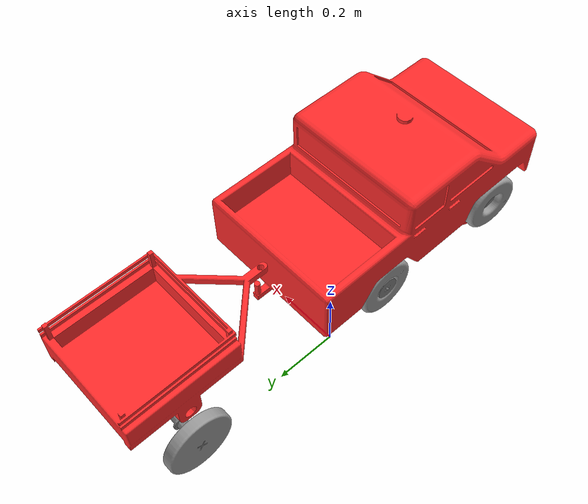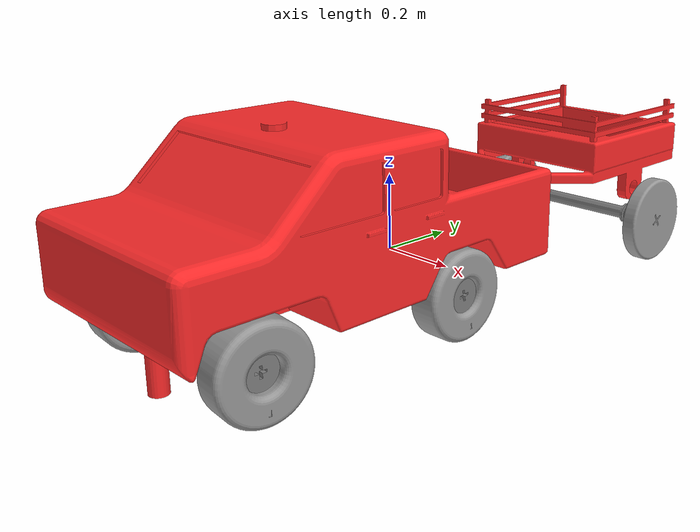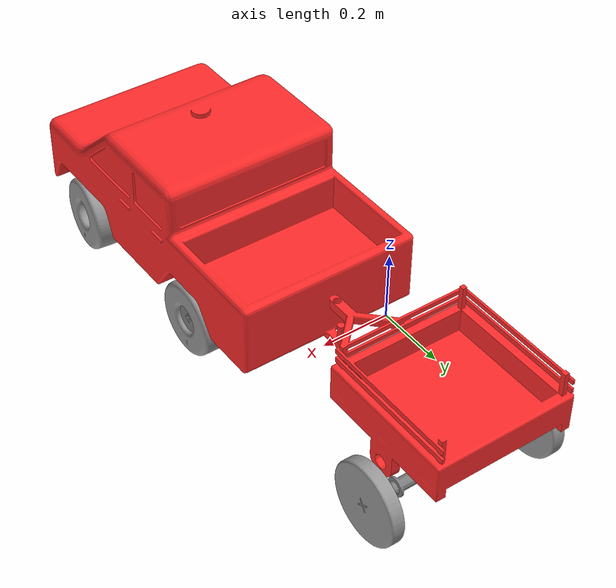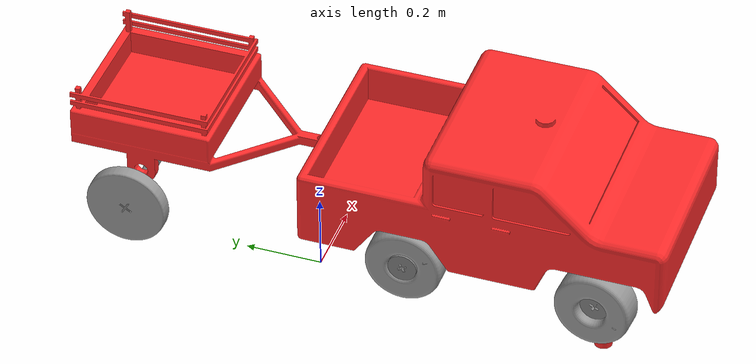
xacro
<?xml version="1.0" ?>
<robot
  name="project_1_group_2" xmlns:xacro="http://ros.org/wiki/xacro">

 <gazebo>
    <plugin filename="libgazebo_ros2_control.so" name="gazebo_ros2_control">
        <parameters>$(find project_1_group_2)/config/control.yaml</parameters>
    </plugin>
</gazebo>

  <xacro:macro name="red_color">
      <visual>
      <material>
          <ambient>1 0.168627450980392 0.168627450980392 1</ambient>
          <diffuse>1 0.168627450980392 0.168627450980392 1</diffuse>
          <specular>0.1 0.1 0.1 1</specular>
          <emissive>0 0 0 0</emissive>
      </material>
      </visual>
  </xacro:macro>

  <xacro:macro name="grey_color">
      <visual>
      <material>
          <ambient>0.8 0.558823529411765 0.1 1</ambient>
          <diffuse>0.8 0.558823529411765 0.1 1</diffuse>
          <specular>0.1 0.1 0.1 1</specular>
          <emissive>0 0 0 0</emissive>
      </material>
      </visual>
  </xacro:macro>

  <xacro:macro name="black_color">
      <visual>
      <material>
          <ambient>0.6 0.6 0.6 1</ambient>
          <diffuse>0.6 0.6 0.6 1</diffuse>
          <specular>0.1 0.1 0.1 1</specular>
          <emissive>0 0 0 0</emissive>
      </material>
      </visual>
  </xacro:macro>

  <link
    name="base_link">
    <inertial>
      <origin
        xyz="0.219542185844718 -0.489097435985613 0.253171163731009"
        rpy="0 0 0" />
      <mass
        value="45.0255547584039" />
      <inertia
        ixx="3.47370213259269"
        ixy="8.68638754770634E-06"
        ixz="1.28817771727052E-06"
        iyy="1.51493007257673"
        iyz="0.0559660105211115"
        izz="4.32787408102168" />
    </inertial>
    <visual>
      <origin
        xyz="0 0 0"
        rpy="0 0 0" />
      <geometry>
        <mesh
          filename="package://project_1_group_2/meshes/base_link.STL" />
      </geometry>
      <material
        name="">
        <color
          rgba="1 0.168627450980392 0.168627450980392 1" />
      </material>
    </visual>
    <collision>
      <origin
        xyz="0 0 0"
        rpy="0 0 0" />
      <geometry>
        <mesh
          filename="package://project_1_group_2/meshes/base_link.STL" />
      </geometry>
    </collision>
  </link>
  <link
    name="steering_wheel_1">
    <inertial>
      <origin
        xyz="2.86075080291326E-08 0.0749063419355981 0.00254051949689649"
        rpy="0 0 0" />
      <mass
        value="0.295424107267104" />
      <inertia
        ixx="0.000710809060839364"
        ixy="1.53957020749097E-10"
        ixz="3.53322320504462E-10"
        iyy="0.000104054571155282"
        iyz="3.85934455800396E-05"
        izz="0.000690101015602261" />
    </inertial>
    <visual>
      <origin
        xyz="0 0 0"
        rpy="0 0 0" />
      <geometry>
        <mesh
          filename="package://project_1_group_2/meshes/steering_wheel_1.STL" />
      </geometry>
      <material
        name="">
        <color
          rgba="1 0.168627450980392 0.168627450980392 1" />
      </material>
    </visual>
    <collision>
      <origin
        xyz="0 0 0"
        rpy="0 0 0" />
      <geometry>
        <mesh
          filename="package://project_1_group_2/meshes/steering_wheel_1.STL" />
      </geometry>
    </collision>
  </link>
  <joint
    name="steering_joint_1"
    type="revolute">
    <origin
      xyz="0.0709516994137151 -0.734196139704711 0.0381336482199598"
      rpy="1.5707963267949 0 -1.64845028267497" />
    <parent
      link="base_link" />
    <child
      link="steering_wheel_1" />
    <axis
      xyz="0 1 0" />
    <limit
      lower="0"
      upper="1.5707963267949"
      effort="1000"
      velocity="0" />
  </joint>
  <link
    name="wheel_1">
    <inertial>
      <origin
        xyz="-1.11022302462516E-16 0.0328469418204771 -1.11022302462516E-16"
        rpy="0 0 0" />
      <mass
        value="0.217134053712094" />
      <inertia
        ixx="0.000126052696684197"
        ixy="-6.05628557286825E-20"
        ixz="-1.01643953670516E-20"
        iyy="0.000159854355976214"
        iyz="-1.22819777351874E-19"
        izz="0.000126052696684198" />
    </inertial>
    <visual>
      <origin
        xyz="0 0 0"
        rpy="0 0 0" />
      <geometry>
        <mesh
          filename="package://project_1_group_2/meshes/wheel_1.STL" />
      </geometry>
      <material
        name="">
        <color
          rgba="0.498039215686275 0.498039215686275 0.498039215686275 1" />
      </material>
    </visual>
    <collision>
      <origin
        xyz="0 0 0"
        rpy="0 0 0" />
      <geometry>
        <mesh
          filename="package://project_1_group_2/meshes/wheel_1.STL" />
      </geometry>
    </collision>
  </link>
  <joint
    name="wheel_1_joint"
    type="continuous">
    <origin
      xyz="0 0.0234950000000013 0.0304806572118972"
      rpy="1.5707963267949 0 1.16336545532605" />
    <parent
      link="steering_wheel_1" />
    <child
      link="wheel_1" />
    <axis
      xyz="0 1 0" />
  </joint>
  <link
    name="tire_1">
    <inertial>
      <origin
        xyz="-2.77555756156289E-16 0.033142685248773 -6.93671252038897E-06"
        rpy="0 0 0" />
      <mass
        value="1.9636352752673" />
      <inertia
        ixx="0.00664149361787531"
        ixy="-5.32614317233504E-18"
        ixz="0"
        iyy="0.0114725337233255"
        iyz="5.01717636383831E-07"
        izz="0.00664244711710664" />
    </inertial>
    <visual>
      <origin
        xyz="0 0 0"
        rpy="0 0 0" />
      <geometry>
        <mesh
          filename="package://project_1_group_2/meshes/tire_1.STL" />
      </geometry>
      <material
        name="">
        <color
          rgba="0.6 0.6 0.6 1" />
      </material>
    </visual>
    <collision>
      <origin
        xyz="0 0 0"
        rpy="0 0 0" />
      <geometry>
        <mesh
          filename="package://project_1_group_2/meshes/tire_1.STL" />
      </geometry>
    </collision>
  </link>
  <joint
    name="tire_joint_1"
    type="fixed">
    <origin
      xyz="0 0 0"
      rpy="0 0 0" />
    <parent
      link="wheel_1" />
    <child
      link="tire_1" />
    <axis
      xyz="0 0 0" />
  </joint>
  <link
    name="steering_wheel_2">
    <inertial>
      <origin
        xyz="2.86075079181103E-08 0.0749063419355979 0.0025405194968966"
        rpy="0 0 0" />
      <mass
        value="0.295424107267104" />
      <inertia
        ixx="0.000710809060839366"
        ixy="1.53957022007787E-10"
        ixz="3.53322320524791E-10"
        iyy="0.000104054571155282"
        iyz="3.85934455800392E-05"
        izz="0.000690101015602263" />
    </inertial>
    <visual>
      <origin
        xyz="0 0 0"
        rpy="0 0 0" />
      <geometry>
        <mesh
          filename="package://project_1_group_2/meshes/steering_wheel_2.STL" />
      </geometry>
      <material
        name="">
        <color
          rgba="1 0.168627450980392 0.168627450980392 1" />
      </material>
    </visual>
    <collision>
      <origin
        xyz="0 0 0"
        rpy="0 0 0" />
      <geometry>
        <mesh
          filename="package://project_1_group_2/meshes/steering_wheel_2.STL" />
      </geometry>
    </collision>
  </link>
  <joint
    name="steering_joint_2"
    type="revolute">
    <origin
      xyz="0.368131699413715 -0.734196139704711 0.0381336482199601"
      rpy="1.5707963267949 0 1.46985194767708" />
    <parent
      link="base_link" />
    <child
      link="steering_wheel_2" />
    <axis
      xyz="0 1 0" />
    <limit
      lower="0"
      upper="1.5707963267949"
      effort="1000"
      velocity="10" />

  </joint>
  <link
    name="wheel_2">
    <inertial>
      <origin
        xyz="-1.11022302462516E-16 0.0327404142384009 4.85722573273506E-17"
        rpy="0 0 0" />
      <mass
        value="0.217134053712094" />
      <inertia
        ixx="0.000126052696684197"
        ixy="-1.40607469244214E-19"
        ixz="4.58162463473438E-22"
        iyy="0.000159854355976214"
        iyz="4.6915870035985E-20"
        izz="0.000126052696684197" />
    </inertial>
    <visual>
      <origin
        xyz="0 0 0"
        rpy="0 0 0" />
      <geometry>
        <mesh
          filename="package://project_1_group_2/meshes/wheel_2.STL" />
      </geometry>
      <material
        name="">
        <color
          rgba="0.498039215686275 0.498039215686275 0.498039215686275 1" />
      </material>
    </visual>
    <collision>
      <origin
        xyz="0 0 0"
        rpy="0 0 0" />
      <geometry>
        <mesh
          filename="package://project_1_group_2/meshes/wheel_2.STL" />
      </geometry>
    </collision>
  </link>
  <joint
    name="wheel_2_joint"
    type="continuous">
    <origin
      xyz="0 0.023495 0.030587184793973"
      rpy="1.5707963267949 0 0" />
    <parent
      link="steering_wheel_2" />
    <child
      link="wheel_2" />
    <axis
      xyz="0 1 0" />
  </joint>
  <link
    name="tire_2">
    <inertial>
      <origin
        xyz="-5.55111512312578E-16 0.0330361576666969 -6.93671252204042E-06"
        rpy="0 0 0" />
      <mass
        value="1.9636352752673" />
      <inertia
        ixx="0.00664149361787532"
        ixy="-2.23887748618257E-17"
        ixz="-2.02295290606123E-20"
        iyy="0.0114725337233255"
        iyz="5.01717636407576E-07"
        izz="0.00664244711710664" />
    </inertial>
    <visual>
      <origin
        xyz="0 0 0"
        rpy="0 0 0" />
      <geometry>
        <mesh
          filename="package://project_1_group_2/meshes/tire_2.STL" />
      </geometry>
      <material
        name="">
        <color
          rgba="0.6 0.6 0.6 1" />
      </material>
    </visual>
    <collision>
      <origin
        xyz="0 0 0"
        rpy="0 0 0" />
      <geometry>
        <mesh
          filename="package://project_1_group_2/meshes/tire_2.STL" />
      </geometry>
    </collision>
  </link>
  <joint
    name="tire_2_joint"
    type="fixed">
    <origin
      xyz="0 0 0"
      rpy="0 0 0" />
    <parent
      link="wheel_2" />
    <child
      link="tire_2" />
    <axis
      xyz="0 0 0" />
  </joint>
  <link
    name="drive_wheel_1">
    <inertial>
      <origin
        xyz="0 -0.00394110038134092 0"
        rpy="0 0 0" />
      <mass
        value="0.217134053712094" />
      <inertia
        ixx="0.000126052696684197"
        ixy="3.3729039727271E-21"
        ixz="3.3881317890172E-21"
        iyy="0.000159854355976214"
        iyz="3.61812388485371E-23"
        izz="0.000126052696684197" />
    </inertial>
    <visual>
      <origin
        xyz="0 0 0"
        rpy="0 0 0" />
      <geometry>
        <mesh
          filename="package://project_1_group_2/meshes/drive_wheel_1.STL" />
      </geometry>
      <material
        name="">
        <color
          rgba="0.498039215686275 0.498039215686275 0.498039215686275 1" />
      </material>
    </visual>
    <collision>
      <origin
        xyz="0 0 0"
        rpy="0 0 0" />
      <geometry>
        <mesh
          filename="package://project_1_group_2/meshes/drive_wheel_1.STL" />
      </geometry>
    </collision>
  </link>
  <joint
    name="drive_wheel_1_joint"
    type="continuous">
    <origin
      xyz="0 -0.226196139704711 0.0616752507094044"
      rpy="0 -1.05614651222822 1.5707963267949" />
    <parent
      link="base_link" />
    <child
      link="drive_wheel_1" />
    <axis
      xyz="0 1 0" />
    <limit
      lower="100"
      upper="10000"
      effort="100"
      velocity="10000" />
  </joint>
  <link
    name="drive_tire_1">
    <inertial>
      <origin
        xyz="4.85722573273506E-17 0.0463546430469551 -6.93671252210981E-06"
        rpy="0 0 0" />
      <mass
        value="1.9636352752673" />
      <inertia
        ixx="0.00664149361787532"
        ixy="5.97502334949104E-19"
        ixz="6.50521303491303E-19"
        iyy="0.0114725337233256"
        iyz="5.01717636401396E-07"
        izz="0.00664244711710664" />
    </inertial>
    <visual>
      <origin
        xyz="0 0 0"
        rpy="0 0 0" />
      <geometry>
        <mesh
          filename="package://project_1_group_2/meshes/drive_tire_1.STL" />
      </geometry>
      <material
        name="">
        <color
          rgba="0.6 0.6 0.6 1" />
      </material>
    </visual>
    <collision>
      <origin
        xyz="0 0 0"
        rpy="0 0 0" />
      <geometry>
        <mesh
          filename="package://project_1_group_2/meshes/drive_tire_1.STL" />
      </geometry>
    </collision>
  </link>
  <joint
    name="drive_tire_joint"
    type="fixed">
    <origin
      xyz="0 -0.05 0"
      rpy="0 0 0" />
    <parent
      link="drive_wheel_1" />
    <child
      link="drive_tire_1" />
    <axis
      xyz="0 0 0" />
  </joint>
  <link
    name="drive_wheel_2">
    <inertial>
      <origin
        xyz="0 0.0251005990323743 0"
        rpy="0 0 0" />
      <mass
        value="0.217134053712094" />
      <inertia
        ixx="0.000126052696684198"
        ixy="-3.63749633218865E-22"
        ixz="3.3881317890172E-21"
        iyy="0.000159854355976214"
        iyz="4.59571290113259E-21"
        izz="0.000126052696684198" />
    </inertial>
    <visual>
      <origin
        xyz="0 0 0"
        rpy="0 0 0" />
      <geometry>
        <mesh
          filename="package://project_1_group_2/meshes/drive_wheel_2.STL" />
      </geometry>
      <material
        name="">
        <color
          rgba="0.498039215686275 0.498039215686275 0.498039215686275 1" />
      </material>
    </visual>
    <collision>
      <origin
        xyz="0 0 0"
        rpy="0 0 0" />
      <geometry>
        <mesh
          filename="package://project_1_group_2/meshes/drive_wheel_2.STL" />
      </geometry>
    </collision>
  </link>
  <joint
    name="drive_wheel_2_joint"
    type="continuous">
    <origin
      xyz="0.410041699413715 -0.226196139704711 0.0616752507094044"
      rpy="0 0.133652884209387 -1.5707963267949" />
    <parent
      link="base_link" />
    <child
      link="drive_wheel_2" />
    <axis
      xyz="0 1 0" />
    <limit
      lower="100"
      upper="10000"
      effort="1000"
      velocity="10000" />
  </joint>
  <link
    name="drive_tire_2">
    <inertial>
      <origin
        xyz="5.55111512312578E-17 0.0380963424606702 -6.93671252208206E-06"
        rpy="0 0 0" />
      <mass
        value="1.9636352752673" />
      <inertia
        ixx="0.00664149361787531"
        ixy="-2.07086320713876E-19"
        ixz="-2.71050543121376E-19"
        iyy="0.0114725337233255"
        iyz="5.01717636401017E-07"
        izz="0.00664244711710664" />
    </inertial>
    <visual>
      <origin
        xyz="0 0 0"
        rpy="0 0 0" />
      <geometry>
        <mesh
          filename="package://project_1_group_2/meshes/drive_tire_2.STL" />
      </geometry>
      <material
        name="">
        <color
          rgba="0.6 0.6 0.6 1" />
      </material>
    </visual>
    <collision>
      <origin
        xyz="0 0 0"
        rpy="0 0 0" />
      <geometry>
        <mesh
          filename="package://project_1_group_2/meshes/drive_tire_2.STL" />
      </geometry>
    </collision>
  </link>
  <joint
    name="drive_tire_2_joint"
    type="fixed">
    <origin
      xyz="0 -0.0127 0"
      rpy="3.14159265358979 0 3.14159265358979" />
    <parent
      link="drive_wheel_2" />
    <child
      link="drive_tire_2" />
    <axis
      xyz="0 0 0" />
  </joint>
  <link
    name="trailer">
    <inertial>
      <origin
        xyz="1.03723919120391E-07 0.039678899062889 0.429404896824894"
        rpy="0 0 0" />
      <mass
        value="5.43041573976378" />
      <inertia
        ixx="0.10730066092027"
        ixy="3.55141031653269E-09"
        ixz="1.34013193774558E-07"
        iyy="0.205190385513249"
        iyz="-0.00161014497039631"
        izz="0.111162712366413" />
    </inertial>
    <visual>
      <origin
        xyz="0 0 0"
        rpy="0 0 0" />
      <geometry>
        <mesh
          filename="package://project_1_group_2/meshes/trailer.STL" />
      </geometry>
      <material
        name="">
        <color
          rgba="1 0.168627450980392 0.168627450980392 1" />
      </material>
    </visual>
    <collision>
      <origin
        xyz="0 0 0"
        rpy="0 0 0" />
      <geometry>
        <mesh
          filename="package://project_1_group_2/meshes/trailer.STL" />
      </geometry>
    </collision>
  </link>
  <joint
    name="trailer_joint"
    type="continuous">
    <origin
      xyz="0.219541699413715 0.0756928741214014 0.118220074500864"
      rpy="1.5707963267949 0 3.14159265358979" />
    <parent
      link="base_link" />
    <child
      link="trailer" />
    <axis
      xyz="0 0 1" />
  </joint>
  <link
    name="trailer_axle">
    <inertial>
      <origin
        xyz="0 1.11022302462516E-16 0"
        rpy="0 0 0" />
      <mass
        value="0.505508059036363" />
      <inertia
        ixx="0.00905526872280177"
        ixy="-1.21084579376871E-18"
        ixz="0"
        iyy="9.38617439436599E-05"
        iyz="-4.50500700801976E-19"
        izz="0.00905526872280177" />
    </inertial>
    <visual>
      <origin
        xyz="0 0 0"
        rpy="0 0 0" />
      <geometry>
        <mesh
          filename="package://project_1_group_2/meshes/trailer_axle.STL" />
      </geometry>
      <material
        name="">
        <color
          rgba="0.498039215686275 0.498039215686275 0.498039215686275 1" />
      </material>
    </visual>
    <collision>
      <origin
        xyz="0 0 0"
        rpy="0 0 0" />
      <geometry>
        <mesh
          filename="package://project_1_group_2/meshes/trailer_axle.STL" />
      </geometry>
    </collision>
  </link>
  <joint
    name="trailer_axle_joint"
    type="continuous">
    <origin
      xyz="0 -0.0513467524152484 0.444499999999999"
      rpy="0 -0.538949692004303 -1.5707963267949" />
    <parent
      link="trailer" />
    <child
      link="trailer_axle" />
    <axis
      xyz="0 1 0" />
  </joint>
  <link
    name="trailer_wheel_1">
    <inertial>
      <origin
        xyz="0 0 0.01905"
        rpy="0 0 0" />
      <mass
        value="0.878446664829222" />
      <inertia
        ixx="0.00184834599849114"
        ixy="-1.0842021724855E-19"
        ixz="3.82736300415033E-20"
        iyy="0.00184834599849114"
        iyz="1.56647416927702E-19"
        izz="0.00348762436406984" />
    </inertial>
    <visual>
      <origin
        xyz="0 0 0"
        rpy="0 0 0" />
      <geometry>
        <mesh
          filename="package://project_1_group_2/meshes/trailer_wheel_1.STL" />
      </geometry>
      <material
        name="">
        <color
          rgba="0.6 0.6 0.6 1" />
      </material>
    </visual>
    <collision>
      <origin
        xyz="0 0 0"
        rpy="0 0 0" />
      <geometry>
        <mesh
          filename="package://project_1_group_2/meshes/trailer_wheel_1.STL" />
      </geometry>
    </collision>
  </link>
  <joint
    name="trailer_wheel_1_joint"
    type="fixed">
    <origin
      xyz="0 0.2159 0"
      rpy="-1.5707963267949 0 0" />
    <parent
      link="trailer_axle" />
    <child
      link="trailer_wheel_1" />
    <axis
      xyz="0 0 0" />
  </joint>
  <link
    name="trailer_wheel_2">
    <inertial>
      <origin
        xyz="0 0 0.01905"
        rpy="0 0 0" />
      <mass
        value="0.878446664829222" />
      <inertia
        ixx="0.00184834599849114"
        ixy="1.0842021724855E-19"
        ixz="2.10174356786361E-19"
        iyy="0.00184834599849114"
        iyz="-1.77579121450258E-19"
        izz="0.00348762436406984" />
    </inertial>
    <visual>
      <origin
        xyz="0 0 0"
        rpy="0 0 0" />
      <geometry>
        <mesh
          filename="package://project_1_group_2/meshes/trailer_wheel_2.STL" />
      </geometry>
      <material
        name="">
        <color
          rgba="0.6 0.6 0.6 1" />
      </material>
    </visual>
    <collision>
      <origin
        xyz="0 0 0"
        rpy="0 0 0" />
      <geometry>
        <mesh
          filename="package://project_1_group_2/meshes/trailer_wheel_2.STL" />
      </geometry>
    </collision>
  </link>
  <joint
    name="trailer_wheel_2_joint"
    type="fixed">
    <origin
      xyz="0 -0.2159 0"
      rpy="-1.5707963267949 0 3.14159265358979" />
    <parent
      link="trailer_axle" />
    <child
      link="trailer_wheel_2" />
    <axis
      xyz="0 0 0" />
  </joint>

  <ros2_control name="GazeboSystem" type="system">
    <hardware>
        <plugin>gazebo_ros2_control/GazeboSystem</plugin>
    </hardware>
    # Velocity Controllers

    <joint name="drive_wheel_2_joint">
        <command_interface name="velocity">
            <param name="min">-10000.0</param>
            <param name="max">10000.0</param>
        </command_interface>
        <state_interface name="position"/>
        <state_interface name="velocity"/>
    </joint>

    <joint name="drive_wheel_1_joint">
        <command_interface name="velocity">
            <param name="min">-10000.0</param>
            <param name="max">10000.0</param>
        </command_interface>
        <state_interface name="position"/>
        <state_interface name="velocity"/>
    </joint>

    # Position Controller
    <joint name="steering_joint_1">
        <command_interface name="position">
            <param name="min">-3.14</param>
            <param name="max">3.14</param>
        </command_interface>
        <state_interface name="position"/>
        <state_interface name="velocity"/>
    </joint>

    # Position Controller
    <joint name="steering_joint_2">
        <command_interface name="position">
            <param name="min">-3.14</param>
            <param name="max">3.14</param>
        </command_interface>
        <state_interface name="position"/>
        <state_interface name="velocity"/>
    </joint>

  </ros2_control>

  <gazebo>
      <plugin filename="libgazebo_ros2_control.so" name="gazebo_ros2_control">
        <parameters>$(find project_1_group_2)/config/control.yaml</parameters>
      </plugin>
  </gazebo>

  <gazebo reference="base_link">
    <xacro:red_color />
  </gazebo>

  <gazebo reference="steering_wheel_1">
    <xacro:red_color />
  </gazebo>

  <gazebo reference="steering_wheel_2">
    <xacro:red_color />
  </gazebo>

  <gazebo reference="wheel_1">
    <xacro:grey_color />
  </gazebo>

  <gazebo reference="wheel_2">
    <xacro:grey_color />
  </gazebo>

  <gazebo reference="tire_1">
    <xacro:black_color />
  </gazebo>

  <gazebo reference="tire_2">
    <xacro:black_color />
  </gazebo>

  <gazebo reference="drive_wheel_1">
    <xacro:grey_color />
  </gazebo>

  <gazebo reference="drive_wheel_2">
    <xacro:grey_color />
  </gazebo>

  <gazebo reference="drive_tire_1">
    <xacro:black_color />
  </gazebo>

  <gazebo reference="drive_tire_2">
    <xacro:black_color />
  </gazebo>

  <gazebo reference="trailer">
    <xacro:red_color />
  </gazebo>

  <gazebo reference="trailer_axle">
    <xacro:grey_color />
  </gazebo>

  <gazebo reference="trailer_wheel_1">
    <xacro:black_color />
  </gazebo>

  <gazebo reference="trailer_wheel_2">
    <xacro:black_color />
  </gazebo>

</robot>
